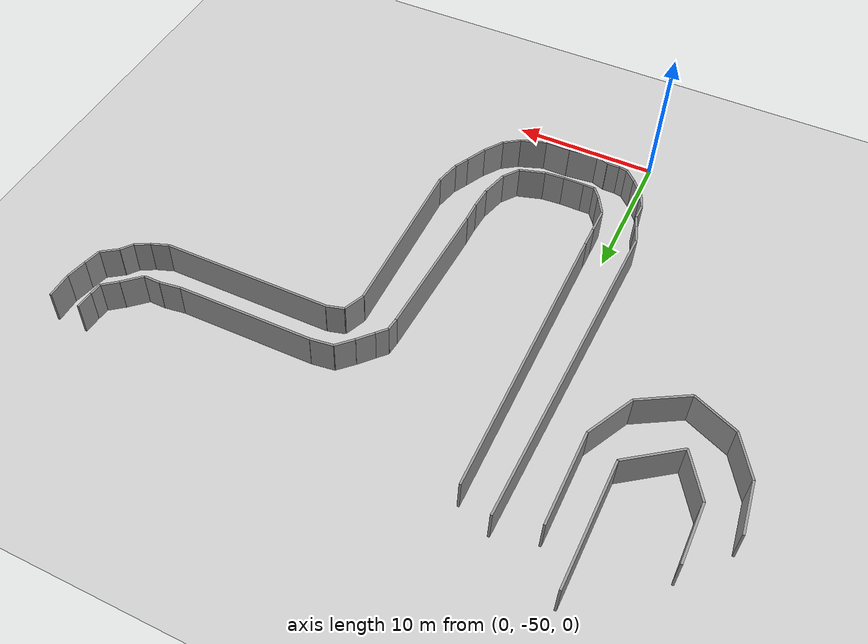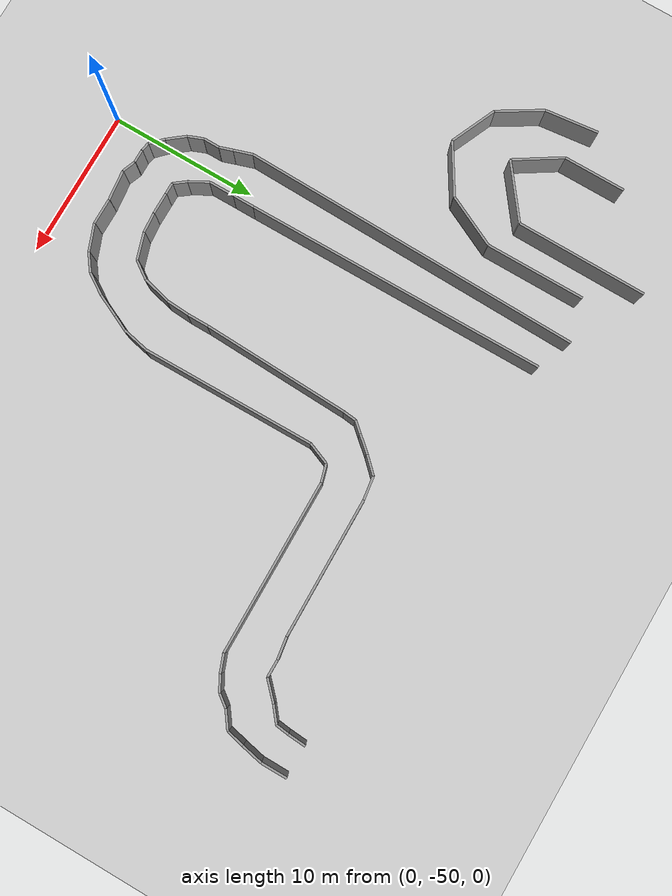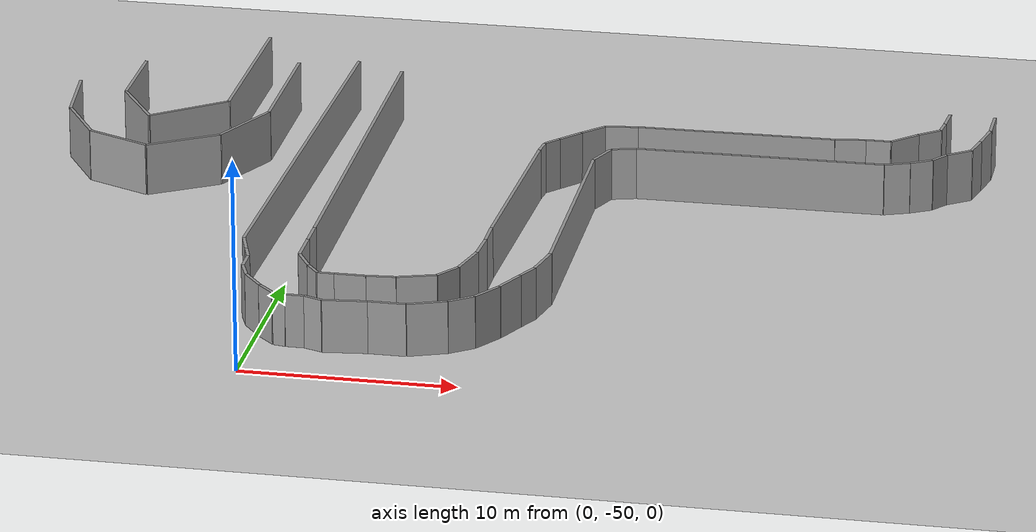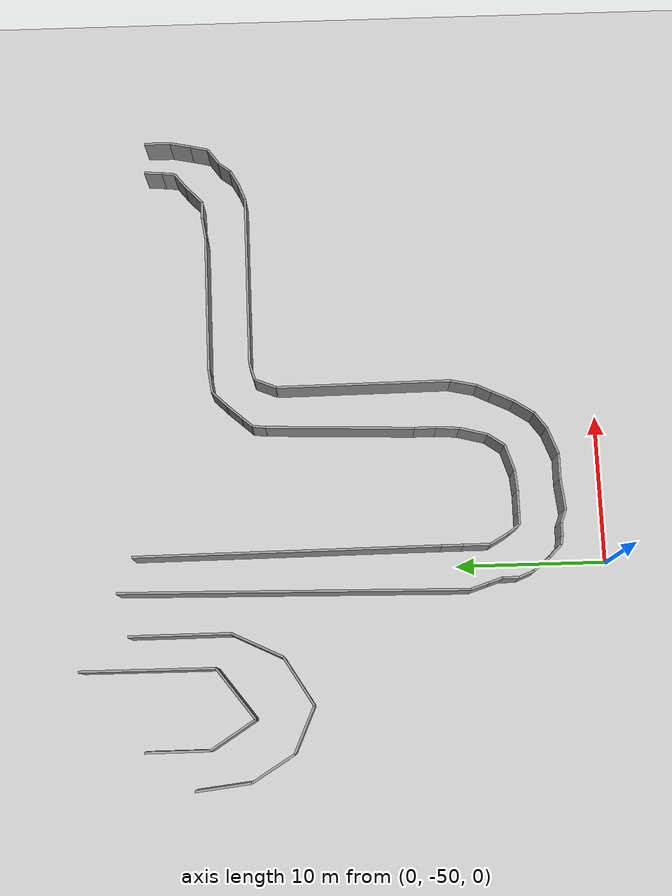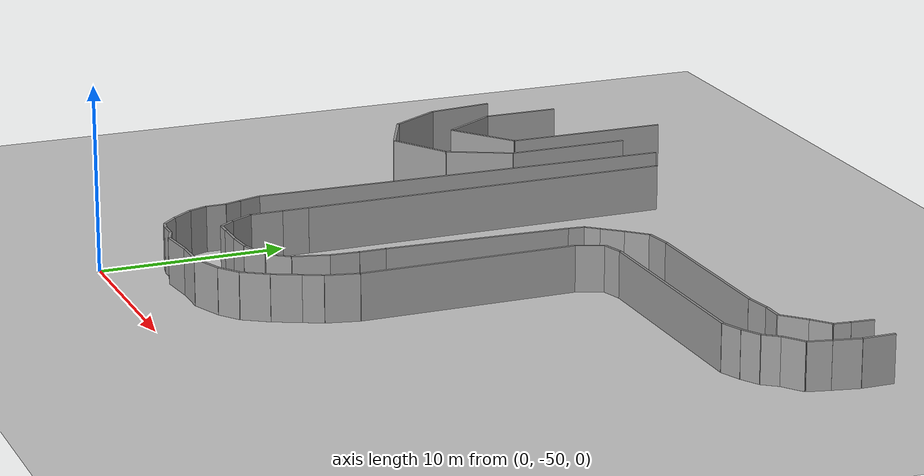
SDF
<sdf version="1.6">
 <world name="default">
  <model name="ground_plane">
   <static>1</static>
   <link name="link">
    <collision name="collision">
     <geometry><plane><normal>0 0 1</normal><size>100 100</size></plane></geometry>
     <surface><friction><ode><mu>100</mu><mu2>50</mu2></ode></friction></surface>
    </collision>
    <visual name="visual">
     <cast_shadows>0</cast_shadows>
     <geometry><plane><normal>0 0 1</normal><size>100 100</size></plane></geometry>
     <material>
      <script><uri>file://media/materials/scripts/gazebo.material</uri><name>Gazebo/Grey</name></script>
     </material>
    </visual>
   </link>
  </model>
  <model name="track2">
   <link name="wall_012">
    <collision name="wall_012_Collision">
     <geometry><box><size>3.606698 0.15 2.5</size></box></geometry>
     <pose>0 0 1.25 0 -0 0</pose>
    </collision>
    <visual name="wall_012_Visual">
     <pose>0 0 1.25 0 -0 0</pose>
     <geometry><box><size>3.606698 0.15 2.5</size></box></geometry>
     <material>
      <script><uri>file://media/materials/scripts/gazebo.material</uri><name>Gazebo/Grey</name></script>
      <ambient>1 1 1 1</ambient>
     </material>
     <meta><layer>0</layer></meta>
    </visual>
    <pose>-13.700000 -24.458000 0 0 -0 1.683046</pose>
   </link>
   <link name="wall_013">
    <collision name="wall_013_Collision">
     <geometry><box><size>3.221519 0.15 2.5</size></box></geometry>
     <pose>0 0 1.25 0 -0 0</pose>
    </collision>
    <visual name="wall_013_Visual">
     <pose>0 0 1.25 0 -0 0</pose>
     <geometry><box><size>3.221519 0.15 2.5</size></box></geometry>
     <material>
      <script><uri>file://media/materials/scripts/gazebo.material</uri><name>Gazebo/Grey</name></script>
      <ambient>1 1 1 1</ambient>
     </material>
     <meta><layer>0</layer></meta>
    </visual>
    <pose>-12.659000 -27.625000 0 0 -0 2.118669</pose>
   </link>
   <link name="wall_014">
    <collision name="wall_014_Collision">
     <geometry><box><size>3.286879 0.15 2.5</size></box></geometry>
     <pose>0 0 1.25 0 -0 0</pose>
    </collision>
    <visual name="wall_014_Visual">
     <pose>0 0 1.25 0 -0 0</pose>
     <geometry><box><size>3.286879 0.15 2.5</size></box></geometry>
     <material>
      <script><uri>file://media/materials/scripts/gazebo.material</uri><name>Gazebo/Grey</name></script>
      <ambient>1 1 1 1</ambient>
     </material>
     <meta><layer>0</layer></meta>
    </visual>
    <pose>-10.318000 -29.667000 0 0 -0 2.723677</pose>
   </link>
   <link name="wall_015">
    <collision name="wall_015_Collision">
     <geometry><box><size>3.664438 0.15 2.5</size></box></geometry>
     <pose>0 0 1.25 0 -0 0</pose>
    </collision>
    <visual name="wall_015_Visual">
     <pose>0 0 1.25 0 -0 0</pose>
     <geometry><box><size>3.664438 0.15 2.5</size></box></geometry>
     <material>
      <script><uri>file://media/materials/scripts/gazebo.material</uri><name>Gazebo/Grey</name></script>
      <ambient>1 1 1 1</ambient>
     </material>
     <meta><layer>0</layer></meta>
    </visual>
    <pose>-7.254800 -29.375000 0 0 -0 -2.590746</pose>
   </link>
   <link name="wall_016">
    <collision name="wall_016_Collision">
     <geometry><box><size>3.704247 0.15 2.5</size></box></geometry>
     <pose>0 0 1.25 0 -0 0</pose>
    </collision>
    <visual name="wall_016_Visual">
     <pose>0 0 1.25 0 -0 0</pose>
     <geometry><box><size>3.704247 0.15 2.5</size></box></geometry>
     <material>
      <script><uri>file://media/materials/scripts/gazebo.material</uri><name>Gazebo/Grey</name></script>
      <ambient>1 1 1 1</ambient>
     </material>
     <meta><layer>0</layer></meta>
    </visual>
    <pose>-4.884400 -26.750000 0 0 -0 -2.022950</pose>
   </link>
   <link name="wall_017">
    <collision name="wall_017_Collision">
     <geometry><box><size>6.668000 0.15 2.5</size></box></geometry>
     <pose>0 0 1.25 0 -0 0</pose>
    </collision>
    <visual name="wall_017_Visual">
     <pose>0 0 1.25 0 -0 0</pose>
     <geometry><box><size>6.668000 0.15 2.5</size></box></geometry>
     <material>
      <script><uri>file://media/materials/scripts/gazebo.material</uri><name>Gazebo/Grey</name></script>
      <ambient>1 1 1 1</ambient>
     </material>
     <meta><layer>0</layer></meta>
    </visual>
    <pose>-4.075200 -21.750000 0 0 -0 -1.570796</pose>
   </link>
   <link name="wall_028">
    <collision name="wall_028_Collision">
     <geometry><box><size>4.166000 0.15 2.5</size></box></geometry>
     <pose>0 0 1.25 0 -0 0</pose>
    </collision>
    <visual name="wall_028_Visual">
     <pose>0 0 1.25 0 -0 0</pose>
     <geometry><box><size>4.166000 0.15 2.5</size></box></geometry>
     <material>
      <script><uri>file://media/materials/scripts/gazebo.material</uri><name>Gazebo/Grey</name></script>
      <ambient>1 1 1 1</ambient>
     </material>
     <meta><layer>0</layer></meta>
    </visual>
    <pose>-11.416000 -21.583000 0 0 -0 1.570796</pose>
   </link>
   <link name="wall_029">
    <collision name="wall_029_Collision">
     <geometry><box><size>3.455029 0.15 2.5</size></box></geometry>
     <pose>0 0 1.25 0 -0 0</pose>
    </collision>
    <visual name="wall_029_Visual">
     <pose>0 0 1.25 0 -0 0</pose>
     <geometry><box><size>3.455029 0.15 2.5</size></box></geometry>
     <material>
      <script><uri>file://media/materials/scripts/gazebo.material</uri><name>Gazebo/Grey</name></script>
      <ambient>1 1 1 1</ambient>
     </material>
     <meta><layer>0</layer></meta>
    </visual>
    <pose>-10.491000 -25.125000 0 0 -0 2.135838</pose>
   </link>
   <link name="wall_030">
    <collision name="wall_030_Collision">
     <geometry><box><size>4.135586 0.15 2.5</size></box></geometry>
     <pose>0 0 1.25 0 -0 0</pose>
    </collision>
    <visual name="wall_030_Visual">
     <pose>0 0 1.25 0 -0 0</pose>
     <geometry><box><size>4.135586 0.15 2.5</size></box></geometry>
     <material>
      <script><uri>file://media/materials/scripts/gazebo.material</uri><name>Gazebo/Grey</name></script>
      <ambient>1 1 1 1</ambient>
     </material>
     <meta><layer>0</layer></meta>
    </visual>
    <pose>-7.918800 -25.334000 0 0 -0 -2.492443</pose>
   </link>
   <link name="wall_031">
    <collision name="wall_031_Collision">
     <geometry><box><size>8.834189 0.15 2.5</size></box></geometry>
     <pose>0 0 1.25 0 -0 0</pose>
    </collision>
    <visual name="wall_031_Visual">
     <pose>0 0 1.25 0 -0 0</pose>
     <geometry><box><size>8.834189 0.15 2.5</size></box></geometry>
     <material>
      <script><uri>file://media/materials/scripts/gazebo.material</uri><name>Gazebo/Grey</name></script>
      <ambient>1 1 1 1</ambient>
     </material>
     <meta><layer>0</layer></meta>
    </visual>
    <pose>-6.242700 -19.667000 0 0 -0 -1.577339</pose>
   </link>
   <link name="wall_056">
    <collision name="wall_056_Collision">
     <geometry><box><size>1.431500 0.15 2.5</size></box></geometry>
     <pose>0 0 1.25 0 -0 0</pose>
    </collision>
    <visual name="wall_056_Visual">
     <pose>0 0 1.25 0 -0 0</pose>
     <geometry><box><size>1.431500 0.15 2.5</size></box></geometry>
     <material>
      <script><uri>file://media/materials/scripts/gazebo.material</uri><name>Gazebo/Grey</name></script>
      <ambient>1 1 1 1</ambient>
     </material>
     <meta><layer>0</layer></meta>
    </visual>
    <pose>1.160250 -39.630250 0 0 -0 1.570796</pose>
   </link>
   <link name="wall_057">
    <collision name="wall_057_Collision">
     <geometry><box><size>1.760500 0.15 2.5</size></box></geometry>
     <pose>0 0 1.25 0 -0 0</pose>
    </collision>
    <visual name="wall_057_Visual">
     <pose>0 0 1.25 0 -0 0</pose>
     <geometry><box><size>1.760500 0.15 2.5</size></box></geometry>
     <material>
      <script><uri>file://media/materials/scripts/gazebo.material</uri><name>Gazebo/Grey</name></script>
      <ambient>1 1 1 1</ambient>
     </material>
     <meta><layer>0</layer></meta>
    </visual>
    <pose>1.160250 -41.226250 0 0 -0 1.570796</pose>
   </link>
   <link name="wall_058">
    <collision name="wall_058_Collision">
     <geometry><box><size>1.387512 0.15 2.5</size></box></geometry>
     <pose>0 0 1.25 0 -0 0</pose>
    </collision>
    <visual name="wall_058_Visual">
     <pose>0 0 1.25 0 -0 0</pose>
     <geometry><box><size>1.387512 0.15 2.5</size></box></geometry>
     <material>
      <script><uri>file://media/materials/scripts/gazebo.material</uri><name>Gazebo/Grey</name></script>
      <ambient>1 1 1 1</ambient>
     </material>
     <meta><layer>0</layer></meta>
    </visual>
    <pose>1.498875 -42.712000 0 0 -0 2.080712</pose>
   </link>
   <link name="wall_059">
    <collision name="wall_059_Collision">
     <geometry><box><size>0.963551 0.15 2.5</size></box></geometry>
     <pose>0 0 1.25 0 -0 0</pose>
    </collision>
    <visual name="wall_059_Visual">
     <pose>0 0 1.25 0 -0 0</pose>
     <geometry><box><size>0.963551 0.15 2.5</size></box></geometry>
     <material>
      <script><uri>file://media/materials/scripts/gazebo.material</uri><name>Gazebo/Grey</name></script>
      <ambient>1 1 1 1</ambient>
     </material>
     <meta><layer>0</layer></meta>
    </visual>
    <pose>2.127125 -43.702500 0 0 -0 2.215750</pose>
   </link>
   <link name="wall_060">
    <collision name="wall_060_Collision">
     <geometry><box><size>0.773500 0.15 2.5</size></box></geometry>
     <pose>0 0 1.25 0 -0 0</pose>
    </collision>
    <visual name="wall_060_Visual">
     <pose>0 0 1.25 0 -0 0</pose>
     <geometry><box><size>0.773500 0.15 2.5</size></box></geometry>
     <material>
      <script><uri>file://media/materials/scripts/gazebo.material</uri><name>Gazebo/Grey</name></script>
      <ambient>1 1 1 1</ambient>
     </material>
     <meta><layer>0</layer></meta>
    </visual>
    <pose>2.803500 -44.087500 0 0 -0 3.141593</pose>
   </link>
   <link name="wall_061">
    <collision name="wall_061_Collision">
     <geometry><box><size>1.450750 0.15 2.5</size></box></geometry>
     <pose>0 0 1.25 0 -0 0</pose>
    </collision>
    <visual name="wall_061_Visual">
     <pose>0 0 1.25 0 -0 0</pose>
     <geometry><box><size>1.450750 0.15 2.5</size></box></geometry>
     <material>
      <script><uri>file://media/materials/scripts/gazebo.material</uri><name>Gazebo/Grey</name></script>
      <ambient>1 1 1 1</ambient>
     </material>
     <meta><layer>0</layer></meta>
    </visual>
    <pose>3.915625 -44.087500 0 0 -0 3.141593</pose>
   </link>
   <link name="wall_062">
    <collision name="wall_062_Collision">
     <geometry><box><size>1.357094 0.15 2.5</size></box></geometry>
     <pose>0 0 1.25 0 -0 0</pose>
    </collision>
    <visual name="wall_062_Visual">
     <pose>0 0 1.25 0 -0 0</pose>
     <geometry><box><size>1.357094 0.15 2.5</size></box></geometry>
     <material>
      <script><uri>file://media/materials/scripts/gazebo.material</uri><name>Gazebo/Grey</name></script>
      <ambient>1 1 1 1</ambient>
     </material>
     <meta><layer>0</layer></meta>
    </visual>
    <pose>5.317375 -44.033250 0 0 -0 -3.061557</pose>
   </link>
   <link name="wall_063">
    <collision name="wall_063_Collision">
     <geometry><box><size>1.826954 0.15 2.5</size></box></geometry>
     <pose>0 0 1.25 0 -0 0</pose>
    </collision>
    <visual name="wall_063_Visual">
     <pose>0 0 1.25 0 -0 0</pose>
     <geometry><box><size>1.826954 0.15 2.5</size></box></geometry>
     <material>
      <script><uri>file://media/materials/scripts/gazebo.material</uri><name>Gazebo/Grey</name></script>
      <ambient>1 1 1 1</ambient>
     </material>
     <meta><layer>0</layer></meta>
    </visual>
    <pose>6.864375 -43.702500 0 0 -0 -2.834079</pose>
   </link>
   <link name="wall_064">
    <collision name="wall_064_Collision">
     <geometry><box><size>1.343913 0.15 2.5</size></box></geometry>
     <pose>0 0 1.25 0 -0 0</pose>
    </collision>
    <visual name="wall_064_Visual">
     <pose>0 0 1.25 0 -0 0</pose>
     <geometry><box><size>1.343913 0.15 2.5</size></box></geometry>
     <material>
      <script><uri>file://media/materials/scripts/gazebo.material</uri><name>Gazebo/Grey</name></script>
      <ambient>1 1 1 1</ambient>
     </material>
     <meta><layer>0</layer></meta>
    </visual>
    <pose>8.121750 -42.876500 0 0 -0 -2.184083</pose>
   </link>
   <link name="wall_065">
    <collision name="wall_065_Collision">
     <geometry><box><size>1.933790 0.15 2.5</size></box></geometry>
     <pose>0 0 1.25 0 -0 0</pose>
    </collision>
    <visual name="wall_065_Visual">
     <pose>0 0 1.25 0 -0 0</pose>
     <geometry><box><size>1.933790 0.15 2.5</size></box></geometry>
     <material>
      <script><uri>file://media/materials/scripts/gazebo.material</uri><name>Gazebo/Grey</name></script>
      <ambient>1 1 1 1</ambient>
     </material>
     <meta><layer>0</layer></meta>
    </visual>
    <pose>8.750000 -41.390750 0 0 -0 -1.823238</pose>
   </link>
   <link name="wall_066">
    <collision name="wall_066_Collision">
     <geometry><box><size>1.543005 0.15 2.5</size></box></geometry>
     <pose>0 0 1.25 0 -0 0</pose>
    </collision>
    <visual name="wall_066_Visual">
     <pose>0 0 1.25 0 -0 0</pose>
     <geometry><box><size>1.543005 0.15 2.5</size></box></geometry>
     <material>
      <script><uri>file://media/materials/scripts/gazebo.material</uri><name>Gazebo/Grey</name></script>
      <ambient>1 1 1 1</ambient>
     </material>
     <meta><layer>0</layer></meta>
    </visual>
    <pose>9.039625 -39.684500 0 0 -0 -1.633215</pose>
   </link>
   <link name="wall_067">
    <collision name="wall_067_Collision">
     <geometry><box><size>1.431500 0.15 2.5</size></box></geometry>
     <pose>0 0 1.25 0 -0 0</pose>
    </collision>
    <visual name="wall_067_Visual">
     <pose>0 0 1.25 0 -0 0</pose>
     <geometry><box><size>1.431500 0.15 2.5</size></box></geometry>
     <material>
      <script><uri>file://media/materials/scripts/gazebo.material</uri><name>Gazebo/Grey</name></script>
      <ambient>1 1 1 1</ambient>
     </material>
     <meta><layer>0</layer></meta>
    </visual>
    <pose>9.087750 -38.198750 0 0 -0 -1.570796</pose>
   </link>
   <link name="wall_068">
    <collision name="wall_068_Collision">
     <geometry><box><size>9.912548 0.15 2.5</size></box></geometry>
     <pose>0 0 1.25 0 -0 0</pose>
    </collision>
    <visual name="wall_068_Visual">
     <pose>0 0 1.25 0 -0 0</pose>
     <geometry><box><size>9.912548 0.15 2.5</size></box></geometry>
     <material>
      <script><uri>file://media/materials/scripts/gazebo.material</uri><name>Gazebo/Grey</name></script>
      <ambient>1 1 1 1</ambient>
     </material>
     <meta><layer>0</layer></meta>
    </visual>
    <pose>9.281125 -32.530500 0 0 -0 -1.609822</pose>
   </link>
   <link name="wall_069">
    <collision name="wall_069_Collision">
     <geometry><box><size>0.885688 0.15 2.5</size></box></geometry>
     <pose>0 0 1.25 0 -0 0</pose>
    </collision>
    <visual name="wall_069_Visual">
     <pose>0 0 1.25 0 -0 0</pose>
     <geometry><box><size>0.885688 0.15 2.5</size></box></geometry>
     <material>
      <script><uri>file://media/materials/scripts/gazebo.material</uri><name>Gazebo/Grey</name></script>
      <ambient>1 1 1 1</ambient>
     </material>
     <meta><layer>0</layer></meta>
    </visual>
    <pose>9.523500 -27.137875 0 0 -0 -1.681672</pose>
   </link>
   <link name="wall_070">
    <collision name="wall_070_Collision">
     <geometry><box><size>0.877953 0.15 2.5</size></box></geometry>
     <pose>0 0 1.25 0 -0 0</pose>
    </collision>
    <visual name="wall_070_Visual">
     <pose>0 0 1.25 0 -0 0</pose>
     <geometry><box><size>0.877953 0.15 2.5</size></box></geometry>
     <material>
      <script><uri>file://media/materials/scripts/gazebo.material</uri><name>Gazebo/Grey</name></script>
      <ambient>1 1 1 1</ambient>
     </material>
     <meta><layer>0</layer></meta>
    </visual>
    <pose>9.862125 -26.367875 0 0 -0 -2.291314</pose>
   </link>
   <link name="wall_071">
    <collision name="wall_071_Collision">
     <geometry><box><size>1.318164 0.15 2.5</size></box></geometry>
     <pose>0 0 1.25 0 -0 0</pose>
    </collision>
    <visual name="wall_071_Visual">
     <pose>0 0 1.25 0 -0 0</pose>
     <geometry><box><size>1.318164 0.15 2.5</size></box></geometry>
     <material>
      <script><uri>file://media/materials/scripts/gazebo.material</uri><name>Gazebo/Grey</name></script>
      <ambient>1 1 1 1</ambient>
     </material>
     <meta><layer>0</layer></meta>
    </visual>
    <pose>10.586625 -25.542750 0 0 -0 -2.291375</pose>
   </link>
   <link name="wall_072">
    <collision name="wall_072_Collision">
     <geometry><box><size>1.384785 0.15 2.5</size></box></geometry>
     <pose>0 0 1.25 0 -0 0</pose>
    </collision>
    <visual name="wall_072_Visual">
     <pose>0 0 1.25 0 -0 0</pose>
     <geometry><box><size>1.384785 0.15 2.5</size></box></geometry>
     <material>
      <script><uri>file://media/materials/scripts/gazebo.material</uri><name>Gazebo/Grey</name></script>
      <ambient>1 1 1 1</ambient>
     </material>
     <meta><layer>0</layer></meta>
    </visual>
    <pose>11.505375 -24.552250 0 0 -0 -2.344577</pose>
   </link>
   <link name="wall_073">
    <collision name="wall_073_Collision">
     <geometry><box><size>1.562635 0.15 2.5</size></box></geometry>
     <pose>0 0 1.25 0 -0 0</pose>
    </collision>
    <visual name="wall_073_Visual">
     <pose>0 0 1.25 0 -0 0</pose>
     <geometry><box><size>1.562635 0.15 2.5</size></box></geometry>
     <material>
      <script><uri>file://media/materials/scripts/gazebo.material</uri><name>Gazebo/Grey</name></script>
      <ambient>1 1 1 1</ambient>
     </material>
     <meta><layer>0</layer></meta>
    </visual>
    <pose>12.762750 -23.946750 0 0 -0 -3.000012</pose>
   </link>
   <link name="wall_074">
    <collision name="wall_074_Collision">
     <geometry><box><size>9.371878 0.15 2.5</size></box></geometry>
     <pose>0 0 1.25 0 -0 0</pose>
    </collision>
    <visual name="wall_074_Visual">
     <pose>0 0 1.25 0 -0 0</pose>
     <geometry><box><size>9.371878 0.15 2.5</size></box></geometry>
     <material>
      <script><uri>file://media/materials/scripts/gazebo.material</uri><name>Gazebo/Grey</name></script>
      <ambient>1 1 1 1</ambient>
     </material>
     <meta><layer>0</layer></meta>
    </visual>
    <pose>18.221875 -23.782250 0 0 -0 -3.130015</pose>
   </link>
   <link name="wall_075">
    <collision name="wall_075_Collision">
     <geometry><box><size>1.469141 0.15 2.5</size></box></geometry>
     <pose>0 0 1.25 0 -0 0</pose>
    </collision>
    <visual name="wall_075_Visual">
     <pose>0 0 1.25 0 -0 0</pose>
     <geometry><box><size>1.469141 0.15 2.5</size></box></geometry>
     <material>
      <script><uri>file://media/materials/scripts/gazebo.material</uri><name>Gazebo/Grey</name></script>
      <ambient>1 1 1 1</ambient>
     </material>
     <meta><layer>0</layer></meta>
    </visual>
    <pose>23.633750 -23.617750 0 0 -0 -2.990936</pose>
   </link>
   <link name="wall_076">
    <collision name="wall_076_Collision">
     <geometry><box><size>1.172500 0.15 2.5</size></box></geometry>
     <pose>0 0 1.25 0 -0 0</pose>
    </collision>
    <visual name="wall_076_Visual">
     <pose>0 0 1.25 0 -0 0</pose>
     <geometry><box><size>1.172500 0.15 2.5</size></box></geometry>
     <material>
      <script><uri>file://media/materials/scripts/gazebo.material</uri><name>Gazebo/Grey</name></script>
      <ambient>1 1 1 1</ambient>
     </material>
     <meta><layer>0</layer></meta>
    </visual>
    <pose>24.946250 -23.507500 0 0 -0 3.141593</pose>
   </link>
   <link name="wall_077">
    <collision name="wall_077_Collision">
     <geometry><box><size>1.596725 0.15 2.5</size></box></geometry>
     <pose>0 0 1.25 0 -0 0</pose>
    </collision>
    <visual name="wall_077_Visual">
     <pose>0 0 1.25 0 -0 0</pose>
     <geometry><box><size>1.596725 0.15 2.5</size></box></geometry>
     <material>
      <script><uri>file://media/materials/scripts/gazebo.material</uri><name>Gazebo/Grey</name></script>
      <ambient>1 1 1 1</ambient>
     </material>
     <meta><layer>0</layer></meta>
    </visual>
    <pose>26.110000 -22.956250 0 0 -0 -2.379446</pose>
   </link>
   <link name="wall_078">
    <collision name="wall_078_Collision">
     <geometry><box><size>1.232601 0.15 2.5</size></box></geometry>
     <pose>0 0 1.25 0 -0 0</pose>
    </collision>
    <visual name="wall_078_Visual">
     <pose>0 0 1.25 0 -0 0</pose>
     <geometry><box><size>1.232601 0.15 2.5</size></box></geometry>
     <material>
      <script><uri>file://media/materials/scripts/gazebo.material</uri><name>Gazebo/Grey</name></script>
      <ambient>1 1 1 1</ambient>
     </material>
     <meta><layer>0</layer></meta>
    </visual>
    <pose>27.168750 -22.020000 0 0 -0 -2.466852</pose>
   </link>
   <link name="wall_079">
    <collision name="wall_079_Collision">
     <geometry><box><size>0.888228 0.15 2.5</size></box></geometry>
     <pose>0 0 1.25 0 -0 0</pose>
    </collision>
    <visual name="wall_079_Visual">
     <pose>0 0 1.25 0 -0 0</pose>
     <geometry><box><size>0.888228 0.15 2.5</size></box></geometry>
     <material>
      <script><uri>file://media/materials/scripts/gazebo.material</uri><name>Gazebo/Grey</name></script>
      <ambient>1 1 1 1</ambient>
     </material>
     <meta><layer>0</layer></meta>
    </visual>
    <pose>27.702500 -21.194000 0 0 -0 -1.689286</pose>
   </link>
   <link name="wall_080">
    <collision name="wall_080_Collision">
     <geometry><box><size>1.210666 0.15 2.5</size></box></geometry>
     <pose>0 0 1.25 0 -0 0</pose>
    </collision>
    <visual name="wall_080_Visual">
     <pose>0 0 1.25 0 -0 0</pose>
     <geometry><box><size>1.210666 0.15 2.5</size></box></geometry>
     <material>
      <script><uri>file://media/materials/scripts/gazebo.material</uri><name>Gazebo/Grey</name></script>
      <ambient>1 1 1 1</ambient>
     </material>
     <meta><layer>0</layer></meta>
    </visual>
    <pose>27.798750 -20.149250 0 0 -0 -1.643134</pose>
   </link>
   <link name="wall_089">
    <collision name="wall_089_Collision">
     <geometry><box><size>20.251231 0.15 2.5</size></box></geometry>
     <pose>0 0 1.25 0 -0 0</pose>
    </collision>
    <visual name="wall_089_Visual">
     <pose>0 0 1.25 0 -0 0</pose>
     <geometry><box><size>20.251231 0.15 2.5</size></box></geometry>
     <material>
      <script><uri>file://media/materials/scripts/gazebo.material</uri><name>Gazebo/Grey</name></script>
      <ambient>1 1 1 1</ambient>
     </material>
     <meta><layer>0</layer></meta>
    </visual>
    <pose>1.111862 -28.789000 0 0 -0 1.575575</pose>
   </link>
   <link name="wall_090">
    <collision name="wall_090_Collision">
     <geometry><box><size>1.271258 0.15 2.5</size></box></geometry>
     <pose>0 0 1.25 0 -0 0</pose>
    </collision>
    <visual name="wall_090_Visual">
     <pose>0 0 1.25 0 -0 0</pose>
     <geometry><box><size>1.271258 0.15 2.5</size></box></geometry>
     <material>
      <script><uri>file://media/materials/scripts/gazebo.material</uri><name>Gazebo/Grey</name></script>
      <ambient>1 1 1 1</ambient>
     </material>
     <meta><layer>0</layer></meta>
    </visual>
    <pose>-1.547000 -41.280500 0 0 -0 1.879922</pose>
   </link>
   <link name="wall_091">
    <collision name="wall_091_Collision">
     <geometry><box><size>0.928499 0.15 2.5</size></box></geometry>
     <pose>0 0 1.25 0 -0 0</pose>
    </collision>
    <visual name="wall_091_Visual">
     <pose>0 0 1.25 0 -0 0</pose>
     <geometry><box><size>0.928499 0.15 2.5</size></box></geometry>
     <material>
      <script><uri>file://media/materials/scripts/gazebo.material</uri><name>Gazebo/Grey</name></script>
      <ambient>1 1 1 1</ambient>
     </material>
     <meta><layer>0</layer></meta>
    </visual>
    <pose>-1.208550 -42.327000 0 0 -0 1.888613</pose>
   </link>
   <link name="wall_092">
    <collision name="wall_092_Collision">
     <geometry><box><size>1.099000 0.15 2.5</size></box></geometry>
     <pose>0 0 1.25 0 -0 0</pose>
    </collision>
    <visual name="wall_092_Visual">
     <pose>0 0 1.25 0 -0 0</pose>
     <geometry><box><size>1.099000 0.15 2.5</size></box></geometry>
     <material>
      <script><uri>file://media/materials/scripts/gazebo.material</uri><name>Gazebo/Grey</name></script>
      <ambient>1 1 1 1</ambient>
     </material>
     <meta><layer>0</layer></meta>
    </visual>
    <pose>-1.063475 -43.317500 0 0 -0 1.570796</pose>
   </link>
   <link name="wall_093">
    <collision name="wall_093_Collision">
     <geometry><box><size>1.063328 0.15 2.5</size></box></geometry>
     <pose>0 0 1.25 0 -0 0</pose>
    </collision>
    <visual name="wall_093_Visual">
     <pose>0 0 1.25 0 -0 0</pose>
     <geometry><box><size>1.063328 0.15 2.5</size></box></geometry>
     <material>
      <script><uri>file://media/materials/scripts/gazebo.material</uri><name>Gazebo/Grey</name></script>
      <ambient>1 1 1 1</ambient>
     </material>
     <meta><layer>0</layer></meta>
    </visual>
    <pose>-0.870100 -44.362250 0 0 -0 1.943051</pose>
   </link>
   <link name="wall_094">
    <collision name="wall_094_Collision">
     <geometry><box><size>1.404486 0.15 2.5</size></box></geometry>
     <pose>0 0 1.25 0 -0 0</pose>
    </collision>
    <visual name="wall_094_Visual">
     <pose>0 0 1.25 0 -0 0</pose>
     <geometry><box><size>1.404486 0.15 2.5</size></box></geometry>
     <material>
      <script><uri>file://media/materials/scripts/gazebo.material</uri><name>Gazebo/Grey</name></script>
      <ambient>1 1 1 1</ambient>
     </material>
     <meta><layer>0</layer></meta>
    </visual>
    <pose>-0.241675 -45.408750 0 0 -0 2.238921</pose>
   </link>
   <link name="wall_095">
    <collision name="wall_095_Collision">
     <geometry><box><size>1.091422 0.15 2.5</size></box></geometry>
     <pose>0 0 1.25 0 -0 0</pose>
    </collision>
    <visual name="wall_095_Visual">
     <pose>0 0 1.25 0 -0 0</pose>
     <geometry><box><size>1.091422 0.15 2.5</size></box></geometry>
     <material>
      <script><uri>file://media/materials/scripts/gazebo.material</uri><name>Gazebo/Grey</name></script>
      <ambient>1 1 1 1</ambient>
     </material>
     <meta><layer>0</layer></meta>
    </visual>
    <pose>0.580125 -46.345000 0 0 -0 2.358462</pose>
   </link>
   <link name="wall_096">
    <collision name="wall_096_Collision">
     <geometry><box><size>0.590184 0.15 2.5</size></box></geometry>
     <pose>0 0 1.25 0 -0 0</pose>
    </collision>
    <visual name="wall_096_Visual">
     <pose>0 0 1.25 0 -0 0</pose>
     <geometry><box><size>0.590184 0.15 2.5</size></box></geometry>
     <material>
      <script><uri>file://media/materials/scripts/gazebo.material</uri><name>Gazebo/Grey</name></script>
      <ambient>1 1 1 1</ambient>
     </material>
     <meta><layer>0</layer></meta>
    </visual>
    <pose>1.256937 -46.784250 0 0 -0 2.956700</pose>
   </link>
   <link name="wall_097">
    <collision name="wall_097_Collision">
     <geometry><box><size>0.869750 0.15 2.5</size></box></geometry>
     <pose>0 0 1.25 0 -0 0</pose>
    </collision>
    <visual name="wall_097_Visual">
     <pose>0 0 1.25 0 -0 0</pose>
     <geometry><box><size>0.869750 0.15 2.5</size></box></geometry>
     <material>
      <script><uri>file://media/materials/scripts/gazebo.material</uri><name>Gazebo/Grey</name></script>
      <ambient>1 1 1 1</ambient>
     </material>
     <meta><layer>0</layer></meta>
    </visual>
    <pose>1.981875 -46.838500 0 0 -0 3.141593</pose>
   </link>
   <link name="wall_098">
    <collision name="wall_098_Collision">
     <geometry><box><size>0.931140 0.15 2.5</size></box></geometry>
     <pose>0 0 1.25 0 -0 0</pose>
    </collision>
    <visual name="wall_098_Visual">
     <pose>0 0 1.25 0 -0 0</pose>
     <geometry><box><size>0.931140 0.15 2.5</size></box></geometry>
     <material>
      <script><uri>file://media/materials/scripts/gazebo.material</uri><name>Gazebo/Grey</name></script>
      <ambient>1 1 1 1</ambient>
     </material>
     <meta><layer>0</layer></meta>
    </visual>
    <pose>2.851625 -47.004750 0 0 -0 2.776443</pose>
   </link>
   <link name="wall_099">
    <collision name="wall_099_Collision">
     <geometry><box><size>2.043680 0.15 2.5</size></box></geometry>
     <pose>0 0 1.25 0 -0 0</pose>
    </collision>
    <visual name="wall_099_Visual">
     <pose>0 0 1.25 0 -0 0</pose>
     <geometry><box><size>2.043680 0.15 2.5</size></box></geometry>
     <material>
      <script><uri>file://media/materials/scripts/gazebo.material</uri><name>Gazebo/Grey</name></script>
      <ambient>1 1 1 1</ambient>
     </material>
     <meta><layer>0</layer></meta>
    </visual>
    <pose>4.302375 -47.060750 0 0 -0 -3.033489</pose>
   </link>
   <link name="wall_100">
    <collision name="wall_100_Collision">
     <geometry><box><size>1.739500 0.15 2.5</size></box></geometry>
     <pose>0 0 1.25 0 -0 0</pose>
    </collision>
    <visual name="wall_100_Visual">
     <pose>0 0 1.25 0 -0 0</pose>
     <geometry><box><size>1.739500 0.15 2.5</size></box></geometry>
     <material>
      <script><uri>file://media/materials/scripts/gazebo.material</uri><name>Gazebo/Grey</name></script>
      <ambient>1 1 1 1</ambient>
     </material>
     <meta><layer>0</layer></meta>
    </visual>
    <pose>6.188000 -46.950500 0 0 -0 3.141593</pose>
   </link>
   <link name="wall_101">
    <collision name="wall_101_Collision">
     <geometry><box><size>1.862668 0.15 2.5</size></box></geometry>
     <pose>0 0 1.25 0 -0 0</pose>
    </collision>
    <visual name="wall_101_Visual">
     <pose>0 0 1.25 0 -0 0</pose>
     <geometry><box><size>1.862668 0.15 2.5</size></box></geometry>
     <material>
      <script><uri>file://media/materials/scripts/gazebo.material</uri><name>Gazebo/Grey</name></script>
      <ambient>1 1 1 1</ambient>
     </material>
     <meta><layer>0</layer></meta>
    </visual>
    <pose>7.928375 -46.619750 0 0 -0 -2.778533</pose>
   </link>
   <link name="wall_102">
    <collision name="wall_102_Collision">
     <geometry><box><size>1.311974 0.15 2.5</size></box></geometry>
     <pose>0 0 1.25 0 -0 0</pose>
    </collision>
    <visual name="wall_102_Visual">
     <pose>0 0 1.25 0 -0 0</pose>
     <geometry><box><size>1.311974 0.15 2.5</size></box></geometry>
     <material>
      <script><uri>file://media/materials/scripts/gazebo.material</uri><name>Gazebo/Grey</name></script>
      <ambient>1 1 1 1</ambient>
     </material>
     <meta><layer>0</layer></meta>
    </visual>
    <pose>9.330125 -45.904000 0 0 -0 -2.514365</pose>
   </link>
   <link name="wall_103">
    <collision name="wall_103_Collision">
     <geometry><box><size>1.581326 0.15 2.5</size></box></geometry>
     <pose>0 0 1.25 0 -0 0</pose>
    </collision>
    <visual name="wall_103_Visual">
     <pose>0 0 1.25 0 -0 0</pose>
     <geometry><box><size>1.581326 0.15 2.5</size></box></geometry>
     <material>
      <script><uri>file://media/materials/scripts/gazebo.material</uri><name>Gazebo/Grey</name></script>
      <ambient>1 1 1 1</ambient>
     </material>
     <meta><layer>0</layer></meta>
    </visual>
    <pose>10.297000 -44.859250 0 0 -0 -2.154502</pose>
   </link>
   <link name="wall_104">
    <collision name="wall_104_Collision">
     <geometry><box><size>1.582875 0.15 2.5</size></box></geometry>
     <pose>0 0 1.25 0 -0 0</pose>
    </collision>
    <visual name="wall_104_Visual">
     <pose>0 0 1.25 0 -0 0</pose>
     <geometry><box><size>1.582875 0.15 2.5</size></box></geometry>
     <material>
      <script><uri>file://media/materials/scripts/gazebo.material</uri><name>Gazebo/Grey</name></script>
      <ambient>1 1 1 1</ambient>
     </material>
     <meta><layer>0</layer></meta>
    </visual>
    <pose>11.070500 -43.483750 0 0 -0 -2.011698</pose>
   </link>
   <link name="wall_105">
    <collision name="wall_105_Collision">
     <geometry><box><size>1.102757 0.15 2.5</size></box></geometry>
     <pose>0 0 1.25 0 -0 0</pose>
    </collision>
    <visual name="wall_105_Visual">
     <pose>0 0 1.25 0 -0 0</pose>
     <geometry><box><size>1.102757 0.15 2.5</size></box></geometry>
     <material>
      <script><uri>file://media/materials/scripts/gazebo.material</uri><name>Gazebo/Grey</name></script>
      <ambient>1 1 1 1</ambient>
     </material>
     <meta><layer>0</layer></meta>
    </visual>
    <pose>11.650625 -42.272750 0 0 -0 -2.025927</pose>
   </link>
   <link name="wall_106">
    <collision name="wall_106_Collision">
     <geometry><box><size>1.802480 0.15 2.5</size></box></geometry>
     <pose>0 0 1.25 0 -0 0</pose>
    </collision>
    <visual name="wall_106_Visual">
     <pose>0 0 1.25 0 -0 0</pose>
     <geometry><box><size>1.802480 0.15 2.5</size></box></geometry>
     <material>
      <script><uri>file://media/materials/scripts/gazebo.material</uri><name>Gazebo/Grey</name></script>
      <ambient>1 1 1 1</ambient>
     </material>
     <meta><layer>0</layer></meta>
    </visual>
    <pose>12.086375 -40.897250 0 0 -0 -1.787043</pose>
   </link>
   <link name="wall_107">
    <collision name="wall_107_Collision">
     <geometry><box><size>11.668362 0.15 2.5</size></box></geometry>
     <pose>0 0 1.25 0 -0 0</pose>
    </collision>
    <visual name="wall_107_Visual">
     <pose>0 0 1.25 0 -0 0</pose>
     <geometry><box><size>11.668362 0.15 2.5</size></box></geometry>
     <material>
      <script><uri>file://media/materials/scripts/gazebo.material</uri><name>Gazebo/Grey</name></script>
      <ambient>1 1 1 1</ambient>
     </material>
     <meta><layer>0</layer></meta>
    </visual>
    <pose>12.230750 -34.183025 0 0 -0 -1.562397</pose>
   </link>
   <link name="wall_108">
    <collision name="wall_108_Collision">
     <geometry><box><size>1.544263 0.15 2.5</size></box></geometry>
     <pose>0 0 1.25 0 -0 0</pose>
    </collision>
    <visual name="wall_108_Visual">
     <pose>0 0 1.25 0 -0 0</pose>
     <geometry><box><size>1.544263 0.15 2.5</size></box></geometry>
     <material>
      <script><uri>file://media/materials/scripts/gazebo.material</uri><name>Gazebo/Grey</name></script>
      <ambient>1 1 1 1</ambient>
     </material>
     <meta><layer>0</layer></meta>
    </visual>
    <pose>12.472250 -27.633650 0 0 -0 -1.956522</pose>
   </link>
   <link name="wall_109">
    <collision name="wall_109_Collision">
     <geometry><box><size>1.206472 0.15 2.5</size></box></geometry>
     <pose>0 0 1.25 0 -0 0</pose>
    </collision>
    <visual name="wall_109_Visual">
     <pose>0 0 1.25 0 -0 0</pose>
     <geometry><box><size>1.206472 0.15 2.5</size></box></geometry>
     <material>
      <script><uri>file://media/materials/scripts/gazebo.material</uri><name>Gazebo/Grey</name></script>
      <ambient>1 1 1 1</ambient>
     </material>
     <meta><layer>0</layer></meta>
    </visual>
    <pose>13.342875 -26.752875 0 0 -0 -2.863891</pose>
   </link>
   <link name="wall_110">
    <collision name="wall_110_Collision">
     <geometry><box><size>11.697503 0.15 2.5</size></box></geometry>
     <pose>0 0 1.25 0 -0 0</pose>
    </collision>
    <visual name="wall_110_Visual">
     <pose>0 0 1.25 0 -0 0</pose>
     <geometry><box><size>11.697503 0.15 2.5</size></box></geometry>
     <material>
      <script><uri>file://media/materials/scripts/gazebo.material</uri><name>Gazebo/Grey</name></script>
      <ambient>1 1 1 1</ambient>
     </material>
     <meta><layer>0</layer></meta>
    </visual>
    <pose>19.771500 -26.533250 0 0 -0 -3.132317</pose>
   </link>
   <link name="wall_111">
    <collision name="wall_111_Collision">
     <geometry><box><size>1.236328 0.15 2.5</size></box></geometry>
     <pose>0 0 1.25 0 -0 0</pose>
    </collision>
    <visual name="wall_111_Visual">
     <pose>0 0 1.25 0 -0 0</pose>
     <geometry><box><size>1.236328 0.15 2.5</size></box></geometry>
     <material>
      <script><uri>file://media/materials/scripts/gazebo.material</uri><name>Gazebo/Grey</name></script>
      <ambient>1 1 1 1</ambient>
     </material>
     <meta><layer>0</layer></meta>
    </visual>
    <pose>26.197500 -26.258500 0 0 -0 -2.776858</pose>
   </link>
   <link name="wall_112">
    <collision name="wall_112_Collision">
     <geometry><box><size>1.123544 0.15 2.5</size></box></geometry>
     <pose>0 0 1.25 0 -0 0</pose>
    </collision>
    <visual name="wall_112_Visual">
     <pose>0 0 1.25 0 -0 0</pose>
     <geometry><box><size>1.123544 0.15 2.5</size></box></geometry>
     <material>
      <script><uri>file://media/materials/scripts/gazebo.material</uri><name>Gazebo/Grey</name></script>
      <ambient>1 1 1 1</ambient>
     </material>
     <meta><layer>0</layer></meta>
    </visual>
    <pose>27.265000 -25.763250 0 0 -0 -2.630561</pose>
   </link>
   <link name="wall_113">
    <collision name="wall_113_Collision">
     <geometry><box><size>0.962500 0.15 2.5</size></box></geometry>
     <pose>0 0 1.25 0 -0 0</pose>
    </collision>
    <visual name="wall_113_Visual">
     <pose>0 0 1.25 0 -0 0</pose>
     <geometry><box><size>0.962500 0.15 2.5</size></box></geometry>
     <material>
      <script><uri>file://media/materials/scripts/gazebo.material</uri><name>Gazebo/Grey</name></script>
      <ambient>1 1 1 1</ambient>
     </material>
     <meta><layer>0</layer></meta>
    </visual>
    <pose>28.043750 -25.103500 0 0 -0 -2.214297</pose>
   </link>
   <link name="wall_114">
    <collision name="wall_114_Collision">
     <geometry><box><size>1.318279 0.15 2.5</size></box></geometry>
     <pose>0 0 1.25 0 -0 0</pose>
    </collision>
    <visual name="wall_114_Visual">
     <pose>0 0 1.25 0 -0 0</pose>
     <geometry><box><size>1.318279 0.15 2.5</size></box></geometry>
     <material>
      <script><uri>file://media/materials/scripts/gazebo.material</uri><name>Gazebo/Grey</name></script>
      <ambient>1 1 1 1</ambient>
     </material>
     <meta><layer>0</layer></meta>
    </visual>
    <pose>28.866250 -24.331750 0 0 -0 -2.514553</pose>
   </link>
   <link name="wall_115">
    <collision name="wall_115_Collision">
     <geometry><box><size>1.239539 0.15 2.5</size></box></geometry>
     <pose>0 0 1.25 0 -0 0</pose>
    </collision>
    <visual name="wall_115_Visual">
     <pose>0 0 1.25 0 -0 0</pose>
     <geometry><box><size>1.239539 0.15 2.5</size></box></geometry>
     <material>
      <script><uri>file://media/materials/scripts/gazebo.material</uri><name>Gazebo/Grey</name></script>
      <ambient>1 1 1 1</ambient>
     </material>
     <meta><layer>0</layer></meta>
    </visual>
    <pose>29.540000 -23.341250 0 0 -0 -1.798653</pose>
   </link>
   <link name="wall_116">
    <collision name="wall_116_Collision">
     <geometry><box><size>1.462087 0.15 2.5</size></box></geometry>
     <pose>0 0 1.25 0 -0 0</pose>
    </collision>
    <visual name="wall_116_Visual">
     <pose>0 0 1.25 0 -0 0</pose>
     <geometry><box><size>1.462087 0.15 2.5</size></box></geometry>
     <material>
      <script><uri>file://media/materials/scripts/gazebo.material</uri><name>Gazebo/Grey</name></script>
      <ambient>1 1 1 1</ambient>
     </material>
     <meta><layer>0</layer></meta>
    </visual>
    <pose>29.828750 -22.021750 0 0 -0 -1.775703</pose>
   </link>
   <link name="wall_117">
    <collision name="wall_117_Collision">
     <geometry><box><size>1.760500 0.15 2.5</size></box></geometry>
     <pose>0 0 1.25 0 -0 0</pose>
    </collision>
    <visual name="wall_117_Visual">
     <pose>0 0 1.25 0 -0 0</pose>
     <geometry><box><size>1.760500 0.15 2.5</size></box></geometry>
     <material>
      <script><uri>file://media/materials/scripts/gazebo.material</uri><name>Gazebo/Grey</name></script>
      <ambient>1 1 1 1</ambient>
     </material>
     <meta><layer>0</layer></meta>
    </visual>
    <pose>29.977500 -20.425750 0 0 -0 -1.570796</pose>
   </link>
   <link name="wall_130">
    <collision name="wall_130_Collision">
     <geometry><box><size>23.007082 0.15 2.5</size></box></geometry>
     <pose>0 0 1.25 0 -0 0</pose>
    </collision>
    <visual name="wall_130_Visual">
     <pose>0 0 1.25 0 -0 0</pose>
     <geometry><box><size>23.007082 0.15 2.5</size></box></geometry>
     <material>
      <script><uri>file://media/materials/scripts/gazebo.material</uri><name>Gazebo/Grey</name></script>
      <ambient>1 1 1 1</ambient>
     </material>
     <meta><layer>0</layer></meta>
    </visual>
    <pose>-1.498613 -29.174000 0 0 -0 1.549778</pose>
   </link>
   <static>1</static>
  </model>
 </world>
</sdf>
